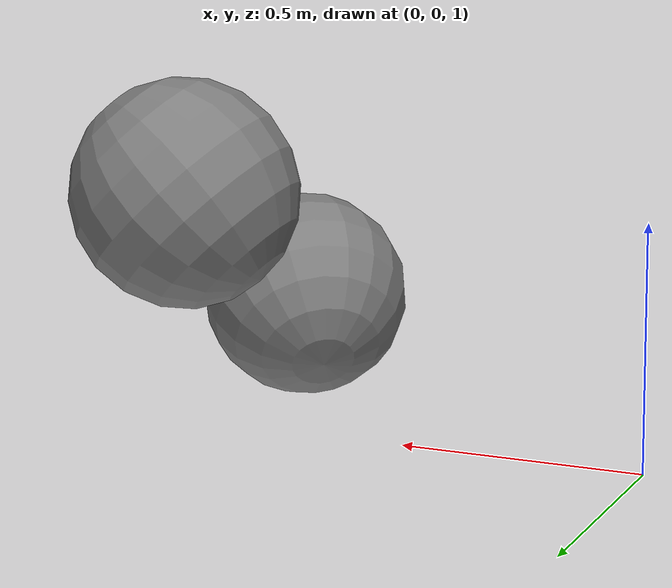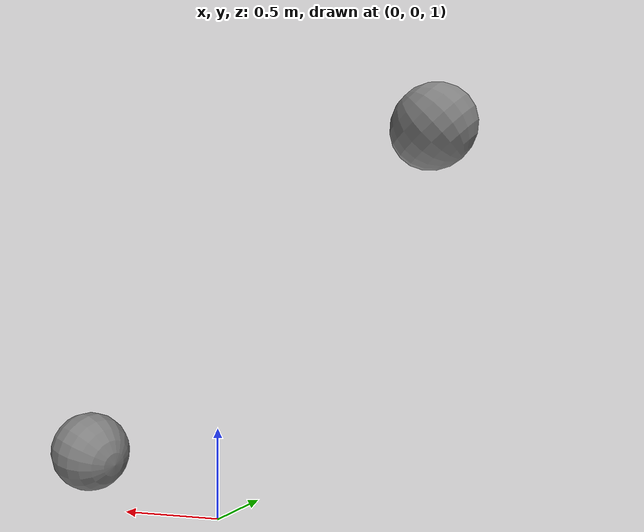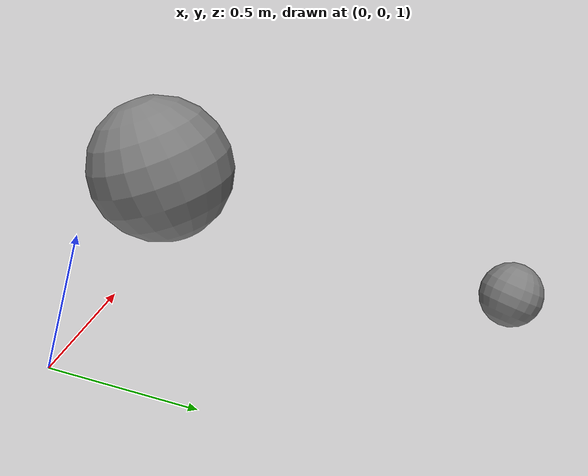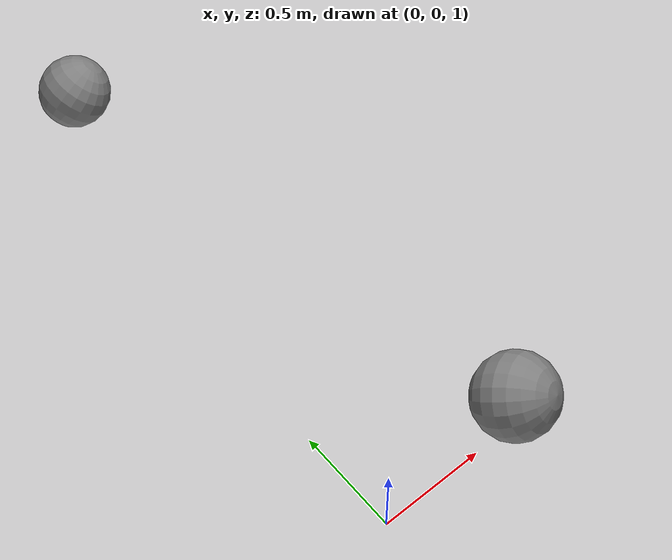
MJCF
<mujoco model="fluid-box">
  <custom>
    <numeric data="20" name="matrix_inv_iterations"/>
    <numeric data="15" name="solver_maxls"/>
  </custom>
  <option timestep="0.001" density="1.2" viscosity="0.15" gravity="0 0 0"/>
  <worldbody>
    <!-- offset the body pos/rot for testing -->
    <body name="body1" pos="0.0 0.0 2.0" euler="0 45 0">
      <inertial pos="0 0.0 0" mass="1" diaginertia="1.1 0.9 1."/>
      <joint axis="1 0 0" name="free3" pos="0 0 0" type="free"/>

      <geom name="sphere" pos="1.00 0.0 0.0" euler="45 0 0" size="0.2" type="sphere"/>

      <body name="body2" pos="0 1 0">
        <inertial pos="0 0.0 0" mass="1" diaginertia="1.1 0.9 1."/>
        <joint axis="1 0 0" name="hinge1" pos="0 0 0" type="hinge"/>
        <geom name="sphere3" pos="0 1 0" size="0.15" type="sphere"/>
      </body>
    </body>
  </worldbody>
</mujoco>
